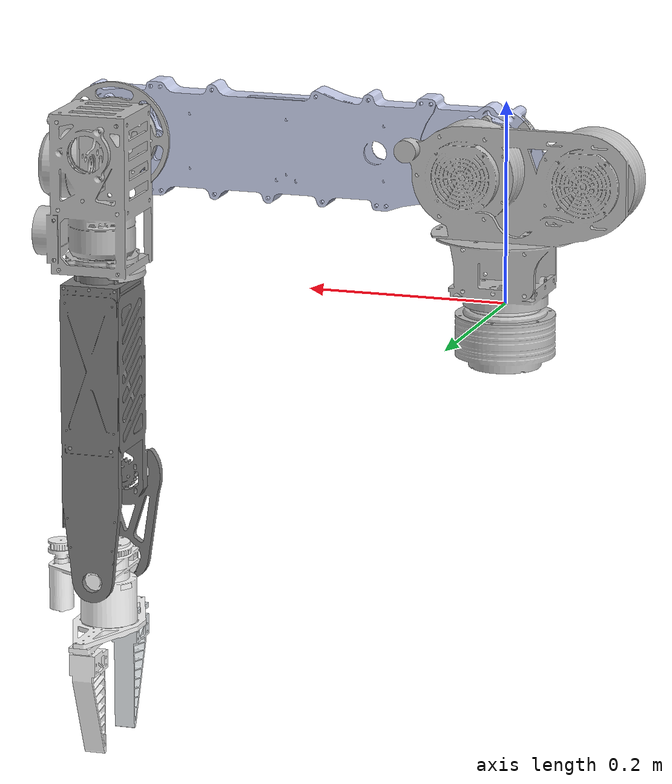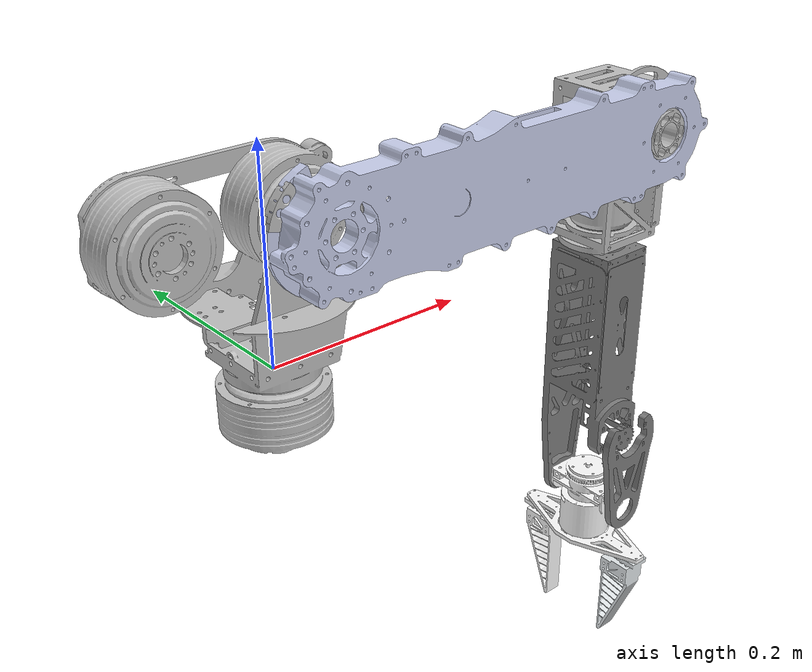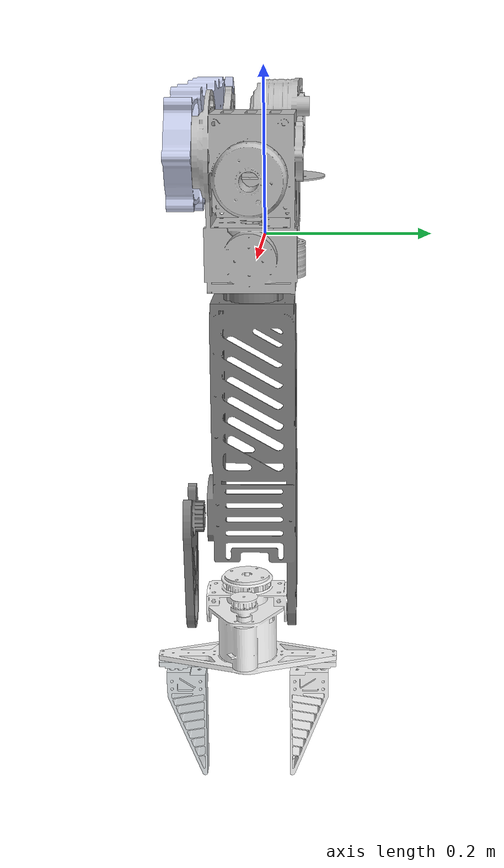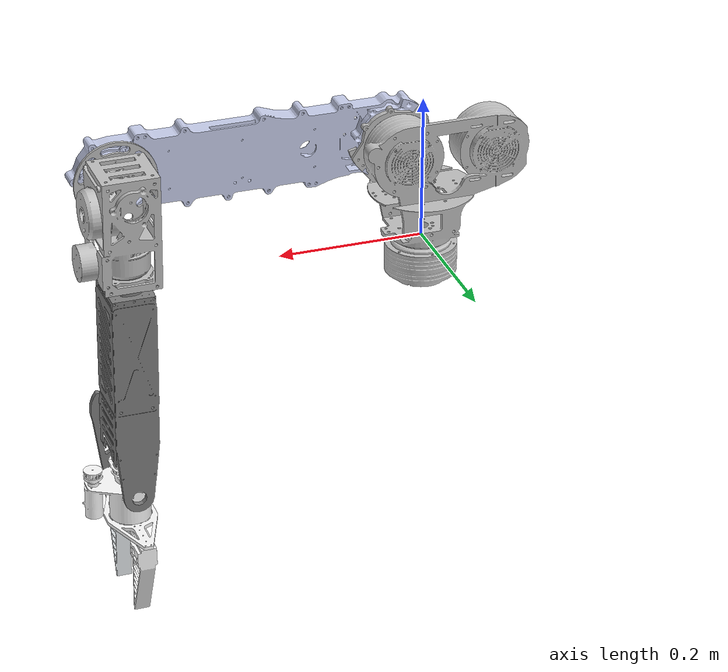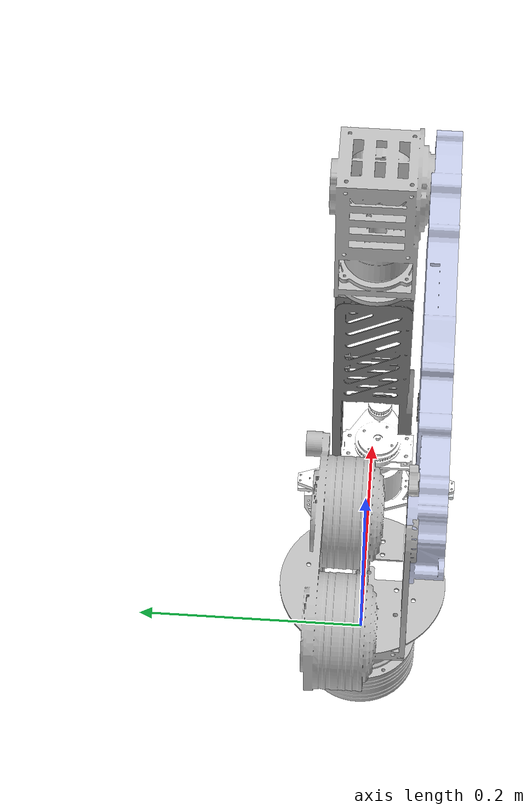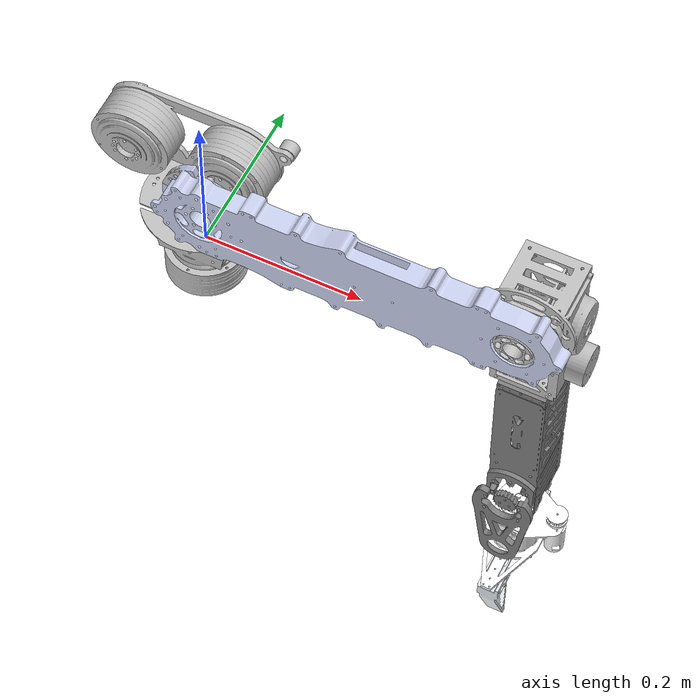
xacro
<?xml version="1.0"?>
<robot xmlns:xacro="http://www.ros.org/wiki/xacro" name="arv_v1_model">
    <xacro:arg name="initial_positions_file" default="initial_positions.yaml" />

    <!-- Import arv_v1 urdf file -->
    <xacro:include filename="$(find arv_v1_model)/urdf/arv_v1.urdf" />

    <!-- Import control_xacro -->
    <xacro:include filename="arv_v1_model.ros2_control.xacro" />

    <!-- ros2_control 标签（使用 mock 硬件） -->
    <xacro:arv_v1_model_ros2_control name="FakeSystem" initial_positions_file="$(arg initial_positions_file)"/>

</robot>

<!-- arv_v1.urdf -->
<robot
  name="arv_v1">
  <link
    name="base_link">
    <inertial>
      <origin
        xyz="-3.96062265210927E-05 4.06405754959547E-05 -0.0285876113334189"
        rpy="0 0 0" />
      <mass
        value="0.349525984991482" />
      <inertia
        ixx="0.000258276357567582"
        ixy="5.10875001153954E-10"
        ixz="1.14928164143574E-08"
        iyy="0.000258629195167637"
        iyz="-9.72936642265145E-09"
        izz="0.000395519919318191" />
    </inertial>
    <visual>
      <origin
        xyz="0 0 0"
        rpy="0 0 0" />
      <geometry>
        <mesh
          filename="package://arv_v1_model/meshes/base_link.STL" />
      </geometry>
      <material
        name="">
        <color
          rgba="0.752941176470588 0.752941176470588 0.752941176470588 1" />
      </material>
    </visual>
    <collision>
      <origin
        xyz="0 0 0"
        rpy="0 0 0" />
      <geometry>
        <mesh
          filename="package://arv_v1_model/meshes/base_link.STL" />
      </geometry>
    </collision>
  </link>
  <link
    name="link1">
    <inertial>
      <origin
        xyz="-0.0154999931132019 0.00790164285412029 0.10483558147126"
        rpy="0 0 0" />
      <mass
        value="1.22525961510696" />
      <inertia
        ixx="0.00126118311285526"
        ixy="4.17187198966648E-07"
        ixz="-9.13199961592474E-06"
        iyy="0.00217005077700243"
        iyz="1.19448129551445E-06"
        izz="0.00132467695230876" />
    </inertial>
    <visual>
      <origin
        xyz="0 0 0"
        rpy="0 0 0" />
      <geometry>
        <mesh
          filename="package://arv_v1_model/meshes/link1.STL" />
      </geometry>
      <material
        name="">
        <color
          rgba="0.752941176470588 0.752941176470588 0.752941176470588 1" />
      </material>
    </visual>
    <collision>
      <origin
        xyz="0 0 0"
        rpy="0 0 0" />
      <geometry>
        <mesh
          filename="package://arv_v1_model/meshes/link1.STL" />
      </geometry>
    </collision>
  </link>
  <joint
    name="joint_1"
    type="revolute">
    <origin
      xyz="0 0 0"
      rpy="0 0 0" />
    <parent
      link="base_link" />
    <child
      link="link1" />
    <axis
      xyz="0 0 1" />
    <limit
      lower="-3.2"
      upper="3.2"
      effort="40"
      velocity="20" />
    <dynamics
      damping="0.3"
      friction="0.3" />
  </joint>
  <link
    name="link2">
    <inertial>
      <origin
        xyz="0.173164697778785 -0.000992870986536 0.0570377412581279"
        rpy="0 0 0" />
      <mass
        value="1.13036010199932" />
      <inertia
        ixx="0.00142587127922893"
        ixy="-2.2216196167755E-05"
        ixz="-6.82089241798455E-06"
        iyy="0.0161880134214926"
        iyz="-5.42767939874218E-06"
        izz="0.0175303272584084" />
    </inertial>
    <visual>
      <origin
        xyz="-0.03215 -0.131 0"
        rpy="0 0 0" />
      <geometry>
        <mesh
          filename="package://arv_v1_model/meshes/link2.STL" />
      </geometry>
      <material
        name="">
        <color
          rgba="0.792156862745098 0.819607843137255 0.933333333333333 1" />
      </material>
    </visual>
    <collision>
      <origin
        xyz="-0.03215 -0.131 0"
        rpy="0 0 0" />
      <geometry>
        <mesh
          filename="package://arv_v1_model/meshes/link2.STL" />
      </geometry>
    </collision>
  </link>
  <joint
    name="joint_2"
    type="revolute">
    <origin
      xyz="0.03215 0 0.131"
      rpy="1.5707963267949 0 0" />
    <parent
      link="link1" />
    <child
      link="link2" />
    <axis
      xyz="0 0 1" />
    <limit
      lower="-3.2"
      upper="3.2"
      effort="40"
      velocity="20" />
    <dynamics
      damping="0.3"
      friction="0.3" />
  </joint>
  <link
    name="link3">
    <inertial>
      <origin
        xyz="0.012887110798264 -0.0441453868504749 0.00524746875047932"
        rpy="0 0 0" />
      <mass
        value="1.11704493186519" />
      <inertia
        ixx="0.000976386970855739"
        ixy="1.85504664047798E-06"
        ixz="1.70978398702784E-06"
        iyy="0.000728423622963117"
        iyz="2.32834239073376E-05"
        izz="0.00107316562710076" />
    </inertial>
    <visual>
      <origin
        xyz="0 0 0"
        rpy="0 0 0" />
      <geometry>
        <mesh
          filename="package://arv_v1_model/meshes/link3.STL" />
      </geometry>
      <material
        name="">
        <color
          rgba="0.752941176470588 0.752941176470588 0.752941176470588 1" />
      </material>
    </visual>
    <collision>
      <origin
        xyz="0 0 0"
        rpy="0 0 0" />
      <geometry>
        <mesh
          filename="package://arv_v1_model/meshes/link3.STL" />
      </geometry>
    </collision>
  </link>
  <joint
    name="joint_3"
    type="revolute">
    <origin
      xyz="0.381000000000038 0 0"
      rpy="0 0 0" />
    <parent
      link="link2" />
    <child
      link="link3" />
    <axis
      xyz="0 0 -1" />
    <limit
      lower="-3.2"
      upper="3.2"
      effort="40"
      velocity="20" />
    <dynamics
      damping="0.3"
      friction="0.3" />
  </joint>
  <link
    name="link4">
    <inertial>
      <origin
        xyz="0.00131044404059455 0.000587890166251056 0.255422134338391"
        rpy="0 0 0" />
      <mass
        value="0.568849364384239" />
      <inertia
        ixx="0.00204398265333448"
        ixy="-1.14924633576366E-13"
        ixz="1.57901120558391E-07"
        iyy="0.0021528805437864"
        iyz="3.85072121760691E-07"
        izz="0.000272291667742801" />
    </inertial>
    <visual>
      <origin
        xyz="0 0 0"
        rpy="0 0 0" />
      <geometry>
        <mesh
          filename="package://arv_v1_model/meshes/link4.STL" />
      </geometry>
      <material
        name="">
        <color
          rgba="0.498039215686275 0.498039215686275 0.498039215686275 1" />
      </material>
    </visual>
    <collision>
      <origin
        xyz="0 0 0"
        rpy="0 0 0" />
      <geometry>
        <mesh
          filename="package://arv_v1_model/meshes/link4.STL" />
      </geometry>
    </collision>
  </link>
  <joint
    name="joint_4"
    type="revolute">
    <origin
      xyz="0 0 0"
      rpy="1.5707963267949 0 0" />
    <parent
      link="link3" />
    <child
      link="link4" />
    <axis
      xyz="0 0 1" />
    <limit
      lower="-3.2"
      upper="3.2"
      effort="1.2"
      velocity="40" />
    <dynamics
      damping="0.3"
      friction="0.3" />
  </joint>
  <link
    name="link5">
    <inertial>
      <origin
        xyz="0.0160961942906923 0.000873845892292946 0.00896455872794405"
        rpy="0 0 0" />
      <mass
        value="0.100227688220142" />
      <inertia
        ixx="1.64507206172253E-05"
        ixy="6.42188110141514E-08"
        ixz="4.70615134188358E-08"
        iyy="2.7887161603753E-05"
        iyz="-1.04704234189188E-08"
        izz="1.65312587892601E-05" />
    </inertial>
    <visual>
      <origin
        xyz="0 0 0"
        rpy="0 0 0" />
      <geometry>
        <mesh
          filename="package://arv_v1_model/meshes/link5.STL" />
      </geometry>
      <material
        name="">
        <color
          rgba="1 1 1 1" />
      </material>
    </visual>
    <collision>
      <origin
        xyz="0 0 0"
        rpy="0 0 0" />
      <geometry>
        <mesh
          filename="package://arv_v1_model/meshes/link5.STL" />
      </geometry>
    </collision>
  </link>
  <joint
    name="joint_5"
    type="revolute">
    <origin
      xyz="0.00129999999995989 -0.00719999999941014 0.43888820457198"
      rpy="-1.5707963267949 0 0" />
    <parent
      link="link4" />
    <child
      link="link5" />
    <axis
      xyz="0 0 -1" />
    <limit
      lower="-3.2"
      upper="3.2"
      effort="7"
      velocity="20" />
    <dynamics
      damping="0.2"
      friction="0.2" />
  </joint>
  <link
    name="link6">
    <inertial>
      <origin
        xyz="-1.71529457304587E-14 0.0093499999991507 0.0563050373172609"
        rpy="0 0 0" />
      <mass
        value="0.0590335082391964" />
      <inertia
        ixx="0.000102014457938577"
        ixy="3.25212808393783E-20"
        ixz="-1.34843408287629E-19"
        iyy="1.54663107387174E-05"
        iyz="-1.11463132074662E-19"
        izz="0.000117139186079753" />
    </inertial>
    <visual>
      <origin
        xyz="0 0 0"
        rpy="0 0 0" />
      <geometry>
        <mesh
          filename="package://arv_v1_model/meshes/link6.STL" />
      </geometry>
      <material
        name="">
        <color
          rgba="1 1 1 1" />
      </material>
    </visual>
    <collision>
      <origin
        xyz="0 0 0"
        rpy="0 0 0" />
      <geometry>
        <mesh
          filename="package://arv_v1_model/meshes/link6.STL" />
      </geometry>
    </collision>
  </link>
  <joint
    name="joint_6"
    type="revolute">
    <origin
      xyz="0 0 0"
      rpy="1.57079632679552 0 0" />
    <parent
      link="link5" />
    <child
      link="link6" />
    <axis
      xyz="0 0 1" />
    <limit
      lower="-3.2"
      upper="3.2"
      effort="1"
      velocity="20" />
    <dynamics
      damping="0.3"
      friction="0.4" />
  </joint>
  <link
    name="link_gripper1">
    <inertial>
      <origin
        xyz="2.95056978849573E-10 -0.0510942800009356 0.0859279675185114"
        rpy="0 0 0" />
      <mass
        value="0.0581710450017314" />
      <inertia
        ixx="3.4674527762254E-05"
        ixy="4.86368595821573E-20"
        ixz="2.23468640635515E-19"
        iyy="2.93632328262258E-05"
        iyz="-4.09085264602205E-06"
        izz="1.14492002585401E-05" />
    </inertial>
    <visual>
      <origin
        xyz="0 0 0"
        rpy="0 0 0" />
      <geometry>
        <mesh
          filename="package://arv_v1_model/meshes/link_gripper1.STL" />
      </geometry>
      <material
        name="">
        <color
          rgba="1 1 1 1" />
      </material>
    </visual>
    <collision>
      <origin
        xyz="0 0 0"
        rpy="0 0 0" />
      <geometry>
        <mesh
          filename="package://arv_v1_model/meshes/link_gripper1.STL" />
      </geometry>
    </collision>
  </link>
  <joint
    name="joint_gripper1"
    type="prismatic">
    <origin
      xyz="0 0 0"
      rpy="0 0 0" />
    <parent
      link="link6" />
    <child
      link="link_gripper1" />
    <axis
      xyz="0 1 0" />
    <limit
      lower="0"
      upper="0.04"
      effort="7"
      velocity="0.1" />
    <dynamics
      damping="0.5"
      friction="0.5" />
  </joint>
  <link
    name="link_gripper2">
    <inertial>
      <origin
        xyz="6.38378239159465E-15 0.0697942805013251 0.0859376907229839"
        rpy="0 0 0" />
      <mass
        value="0.0581710450017313" />
      <inertia
        ixx="3.46745277622539E-05"
        ixy="-4.04009299365662E-20"
        ixz="2.22481464306674E-19"
        iyy="2.93632328262258E-05"
        iyz="4.09085264602213E-06"
        izz="1.14492002585401E-05" />
    </inertial>
    <visual>
      <origin
        xyz="0 0 0"
        rpy="0 0 0" />
      <geometry>
        <mesh
          filename="package://arv_v1_model/meshes/link_gripper2.STL" />
      </geometry>
      <material
        name="">
        <color
          rgba="0.898039215686275 0.917647058823529 0.929411764705882 1" />
      </material>
    </visual>
    <collision>
      <origin
        xyz="0 0 0"
        rpy="0 0 0" />
      <geometry>
        <mesh
          filename="package://arv_v1_model/meshes/link_gripper2.STL" />
      </geometry>
    </collision>
  </link>
  <joint
    name="joint_gripper2"
    type="prismatic">
    <origin
      xyz="0 0 0"
      rpy="0 0 0" />
    <parent
      link="link6" />
    <child
      link="link_gripper2" />
    <axis
      xyz="0 1 0" />
    <limit
      lower="-0.04"
      upper="0"
      effort="7"
      velocity="0.1" />
    <dynamics
      damping="0.5"
      friction="0.5" />
    <mimic
      joint="joint_gripper1"
      multiplier="-1"
      offset="0" />
  </joint>
</robot>
